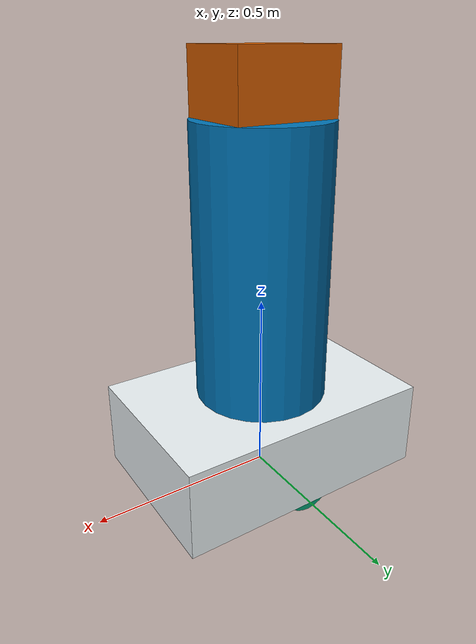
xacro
<?xml version="1.0"?>
<robot name="bonbon" xmlns:xacro="http://www.ros.org/wiki/xacro">
  <xacro:arg name="length_m" default="0.72"/>
  <xacro:arg name="width_m" default="0.48"/>
  <xacro:arg name="height_m" default="1.15"/>
  <xacro:arg name="wheel_radius_m" default="0.075"/>
  <xacro:arg name="wheel_separation_m" default="0.42"/>

  <link name="base_footprint"/>
  <joint name="base_joint" type="fixed">
    <parent link="base_footprint"/>
    <child link="base_link"/>
    <origin xyz="0 0 0.12" rpy="0 0 0"/>
  </joint>

  <link name="base_link">
    <collision>
      <geometry><box size="$(arg length_m) $(arg width_m) 0.24"/></geometry>
    </collision>
    <visual>
      <geometry><box size="$(arg length_m) $(arg width_m) 0.24"/></geometry>
      <material name="bonbon_white"><color rgba="0.92 0.95 0.96 1"/></material>
    </visual>
    <inertial><mass value="28.0"/><origin xyz="0 0 0"/><inertia ixx="1.2" ixy="0" ixz="0" iyy="1.5" iyz="0" izz="1.8"/></inertial>
  </link>

  <link name="left_wheel_link">
    <collision><geometry><cylinder radius="$(arg wheel_radius_m)" length="0.045"/></geometry></collision>
    <visual><geometry><cylinder radius="$(arg wheel_radius_m)" length="0.045"/></geometry></visual>
  </link>
  <joint name="left_wheel_joint" type="continuous">
    <parent link="base_link"/>
    <child link="left_wheel_link"/>
    <origin xyz="0 0.21 -0.07" rpy="1.5708 0 0"/>
    <axis xyz="0 0 1"/>
  </joint>

  <link name="right_wheel_link">
    <collision><geometry><cylinder radius="$(arg wheel_radius_m)" length="0.045"/></geometry></collision>
    <visual><geometry><cylinder radius="$(arg wheel_radius_m)" length="0.045"/></geometry></visual>
  </link>
  <joint name="right_wheel_joint" type="continuous">
    <parent link="base_link"/>
    <child link="right_wheel_link"/>
    <origin xyz="0 -0.21 -0.07" rpy="1.5708 0 0"/>
    <axis xyz="0 0 1"/>
  </joint>

  <link name="torso_link">
    <collision><geometry><cylinder radius="0.18" length="0.75"/></geometry></collision>
    <visual><geometry><cylinder radius="0.18" length="0.75"/></geometry></visual>
  </link>
  <joint name="torso_joint" type="fixed">
    <parent link="base_link"/>
    <child link="torso_link"/>
    <origin xyz="0 0 0.48" rpy="0 0 0"/>
  </joint>

  <link name="head_link">
    <collision><geometry><box size="0.28 0.22 0.18"/></geometry></collision>
    <visual><geometry><box size="0.28 0.22 0.18"/></geometry></visual>
  </link>
  <joint name="head_pan_joint" type="revolute">
    <parent link="torso_link"/>
    <child link="head_link"/>
    <origin xyz="0 0 0.45" rpy="0 0 0"/>
    <axis xyz="0 0 1"/>
    <limit lower="-1.57" upper="1.57" effort="4" velocity="1.2"/>
  </joint>

  <link name="lidar_link"/>
  <joint name="lidar_joint" type="fixed"><parent link="base_link"/><child link="lidar_link"/><origin xyz="0.22 0 0.18" rpy="0 0 0"/></joint>
  <link name="imu_link"/>
  <joint name="imu_joint" type="fixed"><parent link="base_link"/><child link="imu_link"/><origin xyz="0 0 0.14" rpy="0 0 0"/></joint>
  <link name="camera_link"/>
  <joint name="camera_joint" type="fixed"><parent link="head_link"/><child link="camera_link"/><origin xyz="0.16 0 0.02" rpy="0 0 0"/></joint>
  <link name="microphone_link"/>
  <joint name="microphone_joint" type="fixed"><parent link="head_link"/><child link="microphone_link"/><origin xyz="0.08 0.08 0.03" rpy="0 0 0"/></joint>
  <link name="speaker_link"/>
  <joint name="speaker_joint" type="fixed"><parent link="torso_link"/><child link="speaker_link"/><origin xyz="0.12 0 0.1" rpy="0 0 0"/></joint>

  <gazebo>
    <plugin name="diff_drive" filename="libgazebo_ros_diff_drive.so">
      <left_joint>left_wheel_joint</left_joint>
      <right_joint>right_wheel_joint</right_joint>
      <wheel_separation>$(arg wheel_separation_m)</wheel_separation>
      <wheel_diameter>0.15</wheel_diameter>
      <command_topic>/bonbon/safety_gate/cmd_vel</command_topic>
      <odometry_topic>/odom</odometry_topic>
      <robot_base_frame>base_link</robot_base_frame>
    </plugin>
  </gazebo>
</robot>
